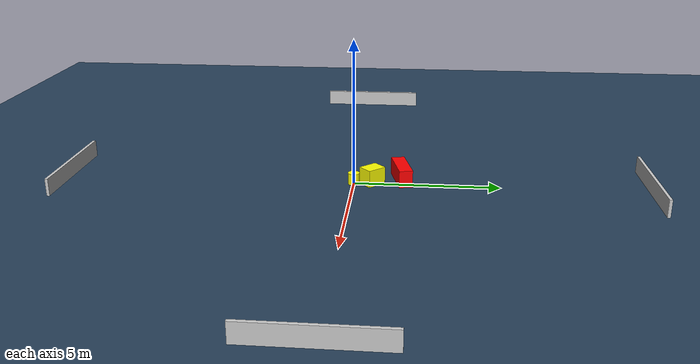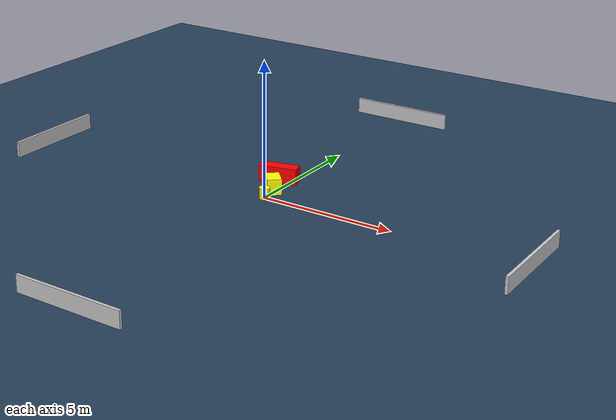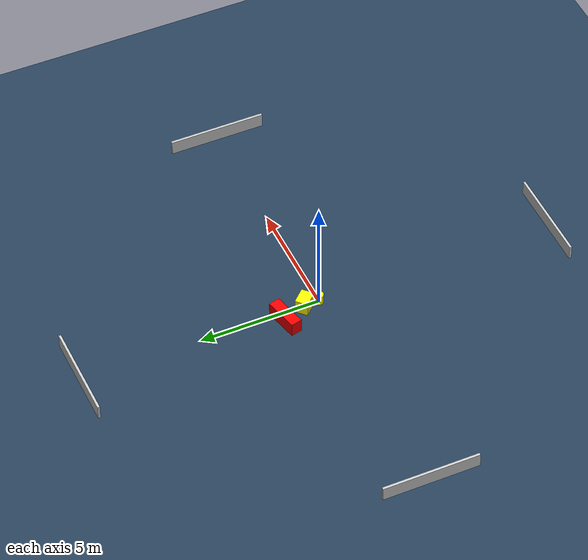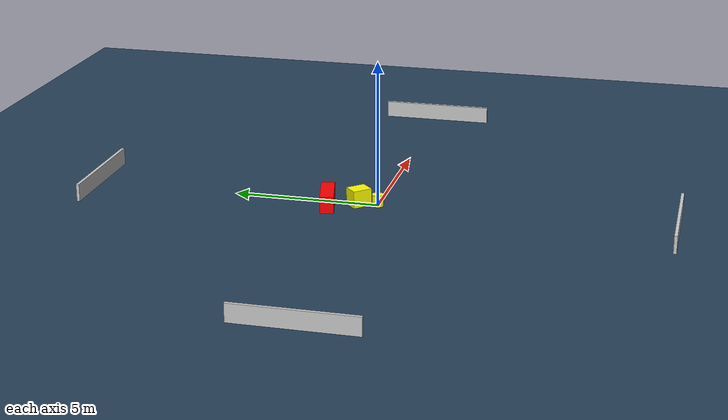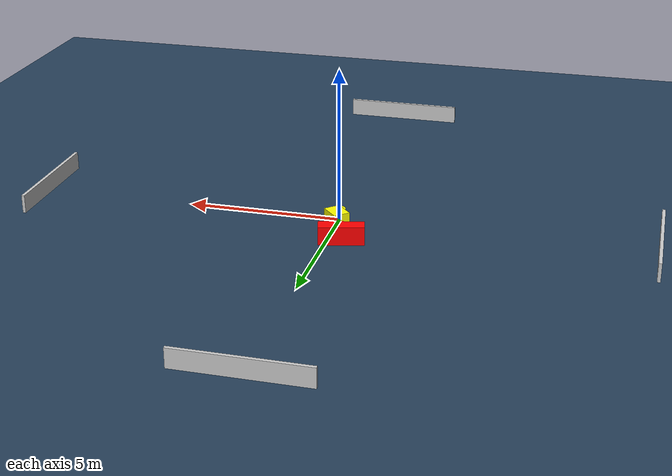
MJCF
<?xml version="1.0" ?>
<mujoco model="generated_environment">
  <option timestep="0.01" integrator="RK4" cone="elliptic"/>
  <default>
    <geom density="1"/>
  </default>
  <asset>
    <texture builtin="gradient" height="3072" name="skybox" rgb1="0.3 0.5 0.7" rgb2="0 0 0" type="skybox" width="512"/>
    <texture builtin="checker" height="300" name="groundplane" rgb1="0.2 0.3 0.4" rgb2="0.1 0.2 0.3" type="2d" width="300"/>
    <material name="groundplane" reflectance="0.2" texrepeat="5 5" texture="groundplane"/>
  </asset>
  <worldbody>
    <light dir="0 0 -1" directional="true" pos="0 0 1.5"/>
    <geom condim="3" friction="0.5 0.005 0.001" material="groundplane" name="floor" pos="0 0 0" size="0 0 0.05" type="plane"/>
    <body name="walls">
      <geom name="wall_1" condim="4" pos="-10.0 0.0 0.3" rgba="0.800000011920929 0.800000011920929 0.800000011920929 1.0" size="0.05 2.0 0.3" type="box"/>
      <geom name="wall_2" condim="4" pos="10.0 0.0 0.3" rgba="0.800000011920929 0.800000011920929 0.800000011920929 1.0" size="0.05 2.0 0.3" type="box"/>
      <geom name="wall_3" condim="4" pos="0.0 -10.0 0.3" rgba="0.800000011920929 0.800000011920929 0.800000011920929 1.0" size="2.0 0.05 0.3" type="box"/>
      <geom name="wall_4" condim="4" pos="0.0 10.0 0.3" rgba="0.800000011920929 0.800000011920929 0.800000011920929 1.0" size="2.0 0.05 0.3" type="box"/>
    </body>
    <body name="robot">
      <joint name="joint_x" type="slide" pos="0 0 0" axis="1 0 0"/>
      <joint name="joint_y" type="slide" pos="0 0 0" axis="0 1 0"/>
      <geom name="robot" type="cylinder" pos="0.0 0.0 0.2" size="0.2 0.2 0.0" mass="5.0" friction="1.0 0.005 0.0001" condim="4" rgba="1.0 1.0 0.0 1.0"/>
    </body>
    <body name="obstacle_1_movable">
      <geom name="obstacle_1_movable" condim="4" pos="-0.07789434270837446 0.6354814139465232 0.3" euler="0 0 222.9929142561762" friction="0.0 0.005 0.001" rgba="1.0 1.0 0.0 1.0" size="0.2656052838580319 0.341627345781942 0.3" type="box" mass="0.1"/>
      <joint type="free"/>
    </body>
    <body name="obstacle_2_static">
      <geom name="obstacle_2_static" condim="4" pos="-0.47217122113883214 1.6321904950567316 0.3" euler="0 0 193.43797504551782" friction="0.0 0.005 0.001" rgba="1.0 0.0 0.0 1.0" size="0.716860273535989 0.23326993989604747 0.3" type="box"/>
    </body>
  </worldbody>
  <actuator>
    <motor name="actuator_x" joint="joint_x" gear="1" ctrlrange="-1 1"/>
    <motor name="actuator_y" joint="joint_y" gear="1" ctrlrange="-1 1"/>
  </actuator>
</mujoco>
